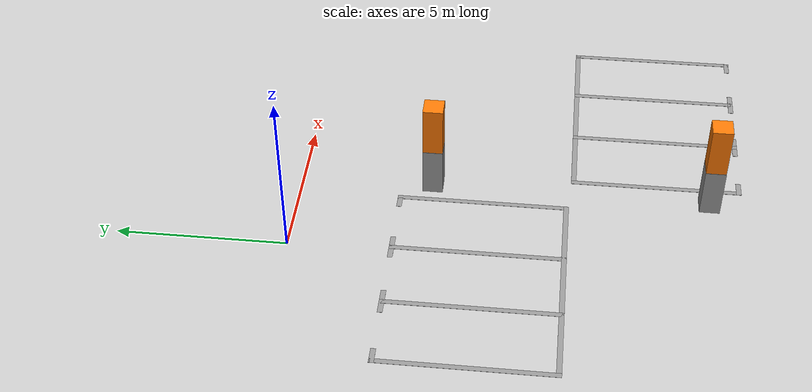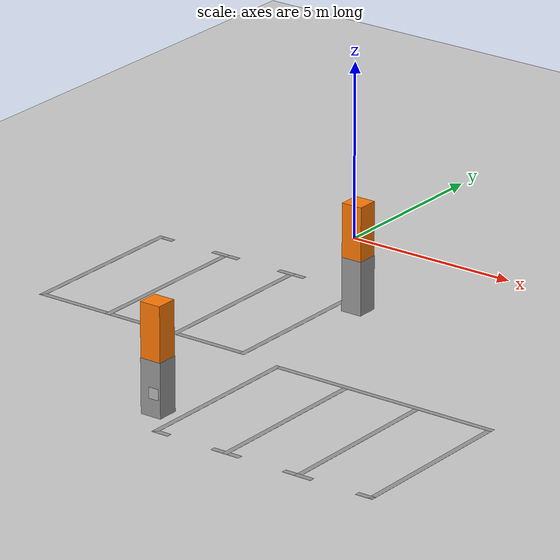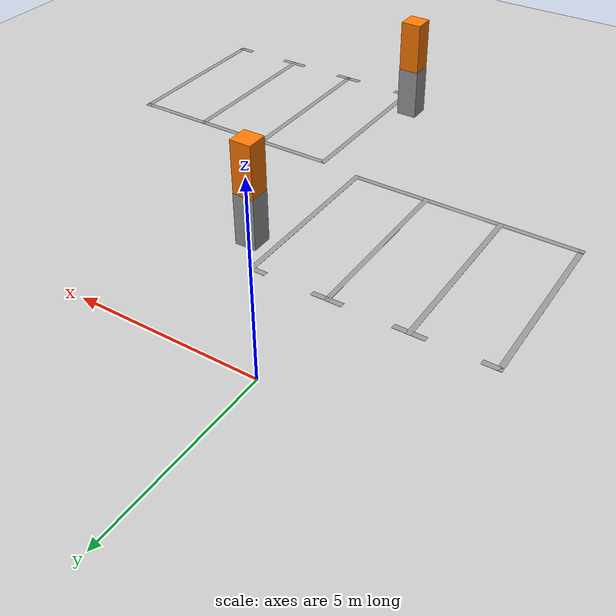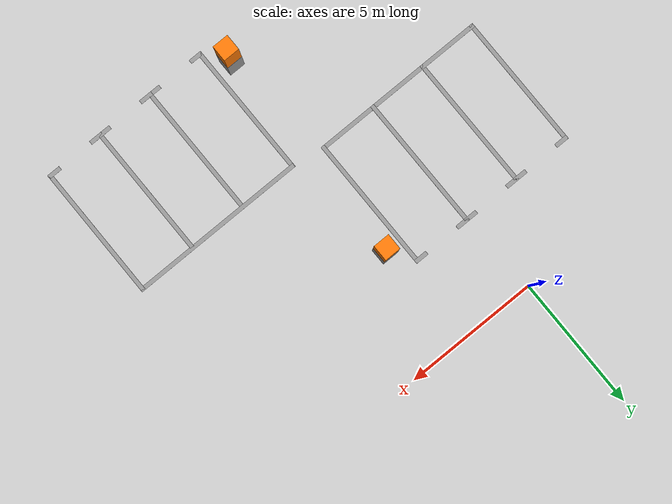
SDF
<sdf version="1.7">
 <world name="default">
  <model name="ground_plane">
   <static>1</static>
   <link name="link">
    <collision name="collision">
     <geometry><plane><normal>0 0 1</normal><size>100 100</size></plane></geometry>
     <surface><friction><ode><mu>100</mu><mu2>50</mu2></ode></friction></surface>
    </collision>
    <visual name="visual">
     <cast_shadows>0</cast_shadows>
     <geometry><plane><normal>0 0 1</normal><size>100 100</size></plane></geometry>
     <material>
      <script><uri>file://media/materials/scripts/gazebo.material</uri><name>Gazebo/Grey</name></script>
     </material>
    </visual>
   </link>
  </model>
  <model name="carport1_4_clone_2">
   <pose>-0.47857 -7.23796 0 0 -0 3.14141</pose>
   <link name="Wall_105">
    <collision name="Wall_105_Collision">
     <geometry><box><size>0.61 0.6 1.5</size></box></geometry>
     <pose>0 0 0.75 0 -0 0</pose>
    </collision>
    <visual name="Wall_105_Visual">
     <pose>0 0 0.75 0 -0 0</pose>
     <geometry><box><size>0.61 0.6 1.5</size></box></geometry>
     <material>
      <script><uri>file://media/materials/scripts/gazebo.material</uri><name>Gazebo/Grey</name></script>
      <ambient>1 1 1 1</ambient>
     </material>
     <meta><layer>0</layer></meta>
    </visual>
    <pose>-3.47407 -3.2865 0 0 -0 0</pose>
   </link>
   <link name="Wall_116">
    <collision name="Wall_116_Collision">
     <geometry><box><size>5.1 0.15 0.005</size></box></geometry>
     <pose>0 0 0.0025 0 -0 0</pose>
    </collision>
    <visual name="Wall_116_Visual">
     <pose>0 0 0.0025 0 -0 0</pose>
     <geometry><box><size>5.1 0.15 0.005</size></box></geometry>
     <material>
      <script><uri>file://media/materials/scripts/gazebo.material</uri><name>Gazebo/Grey</name></script>
      <ambient>1 1 1 1</ambient>
     </material>
     <meta><layer>0</layer></meta>
    </visual>
    <pose>-2.82307 -1.7385 0 0 -0 1.5708</pose>
   </link>
   <link name="Wall_124">
    <collision name="Wall_124_Collision">
     <geometry><box><size>5.1 0.15 0.005</size></box></geometry>
     <pose>0 0 0.0025 0 -0 0</pose>
    </collision>
    <visual name="Wall_124_Visual">
     <pose>0 0 0.0025 0 -0 0</pose>
     <geometry><box><size>5.1 0.15 0.005</size></box></geometry>
     <material>
      <script><uri>file://media/materials/scripts/gazebo.material</uri><name>Gazebo/Grey</name></script>
      <ambient>1 1 1 1</ambient>
     </material>
     <meta><layer>0</layer></meta>
    </visual>
    <pose>3.70393 -1.7305 0 0 -0 1.5708</pose>
   </link>
   <link name="Wall_146">
    <collision name="Wall_146_Collision">
     <geometry><box><size>6.67711 0.15 0.005</size></box></geometry>
     <pose>0 0 0.0025 0 -0 0</pose>
    </collision>
    <visual name="Wall_146_Visual">
     <pose>0 0 0.0025 0 -0 0</pose>
     <geometry><box><size>6.67711 0.15 0.005</size></box></geometry>
     <material>
      <script><uri>file://media/materials/scripts/gazebo.material</uri><name>Gazebo/Grey</name></script>
      <ambient>1 1 1 1</ambient>
     </material>
     <meta><layer>0</layer></meta>
    </visual>
    <pose>0.440428 0.7405 0 0 -0 0.001226</pose>
   </link>
   <link name="Wall_168">
    <collision name="Wall_168_Collision">
     <geometry><box><size>5.1 0.15 0.005</size></box></geometry>
     <pose>0 0 0.0025 0 -0 0</pose>
    </collision>
    <visual name="Wall_168_Visual">
     <pose>0 0 0.0025 0 -0 0</pose>
     <geometry><box><size>5.1 0.15 0.005</size></box></geometry>
     <material>
      <script><uri>file://media/materials/scripts/gazebo.material</uri><name>Gazebo/Grey</name></script>
      <ambient>1 1 1 1</ambient>
     </material>
     <meta><layer>0</layer></meta>
    </visual>
    <pose>-0.64827 -1.73839 0 0 -0 1.57088</pose>
   </link>
   <link name="Wall_173">
    <collision name="Wall_173_Collision">
     <geometry><box><size>5.1 0.15 0.005</size></box></geometry>
     <pose>0 0 0.0025 0 -0 0</pose>
    </collision>
    <visual name="Wall_173_Visual">
     <pose>0 0 0.0025 0 -0 0</pose>
     <geometry><box><size>5.1 0.15 0.005</size></box></geometry>
     <material>
      <script><uri>file://media/materials/scripts/gazebo.material</uri><name>Gazebo/Grey</name></script>
      <ambient>1 1 1 1</ambient>
     </material>
     <meta><layer>0</layer></meta>
    </visual>
    <pose>1.52673 -1.73839 0 0 -0 1.57088</pose>
   </link>
   <link name="Wall_177">
    <collision name="Wall_177_Collision">
     <geometry><box><size>0.6 0.59 3</size></box></geometry>
     <pose>0 0 1.5 0 -0 0</pose>
    </collision>
    <visual name="Wall_177_Visual">
     <pose>0 0 1.5 0 -0 0</pose>
     <geometry><box><size>0.6 0.59 3</size></box></geometry>
     <material>
      <script><uri>file://media/materials/scripts/gazebo.material</uri><name>Gazebo/Grey</name></script>
      <ambient>0.996078 0.47451 0.0196078 1</ambient>
     </material>
     <meta><layer>0</layer></meta>
    </visual>
    <pose>-3.47407 -3.2865 0 0 -0 0</pose>
   </link>
   <link name="Wall_179">
    <collision name="Wall_179_Collision">
     <geometry><box><size>0.5 0.15 0.005</size></box></geometry>
     <pose>0 0 0.0025 0 -0 0</pose>
    </collision>
    <visual name="Wall_179_Visual">
     <pose>0 0 0.0025 0 -0 0</pose>
     <geometry><box><size>0.5 0.15 0.005</size></box></geometry>
     <material>
      <script><uri>file://media/materials/scripts/gazebo.material</uri><name>Gazebo/Grey</name></script>
      <ambient>1 1 1 1</ambient>
     </material>
     <meta><layer>0</layer></meta>
    </visual>
    <pose>-2.64807 -4.2135 0 0 -0 0</pose>
   </link>
   <link name="Wall_181">
    <collision name="Wall_181_Collision">
     <geometry><box><size>0.5 0.15 0.005</size></box></geometry>
     <pose>0 0 0.0025 0 -0 0</pose>
    </collision>
    <visual name="Wall_181_Visual">
     <pose>0 0 0.0025 0 -0 0</pose>
     <geometry><box><size>0.5 0.15 0.005</size></box></geometry>
     <material>
      <script><uri>file://media/materials/scripts/gazebo.material</uri><name>Gazebo/Grey</name></script>
      <ambient>1 1 1 1</ambient>
     </material>
     <meta><layer>0</layer></meta>
    </visual>
    <pose>-0.823072 -4.2135 0 0 -0 3.14159</pose>
   </link>
   <link name="Wall_183">
    <collision name="Wall_183_Collision">
     <geometry><box><size>0.5 0.15 0.005</size></box></geometry>
     <pose>0 0 0.0025 0 -0 0</pose>
    </collision>
    <visual name="Wall_183_Visual">
     <pose>0 0 0.0025 0 -0 0</pose>
     <geometry><box><size>0.5 0.15 0.005</size></box></geometry>
     <material>
      <script><uri>file://media/materials/scripts/gazebo.material</uri><name>Gazebo/Grey</name></script>
      <ambient>1 1 1 1</ambient>
     </material>
     <meta><layer>0</layer></meta>
    </visual>
    <pose>-0.473072 -4.2135 0 0 -0 0</pose>
   </link>
   <link name="Wall_185">
    <collision name="Wall_185_Collision">
     <geometry><box><size>0.5 0.15 0.005</size></box></geometry>
     <pose>0 0 0.0025 0 -0 0</pose>
    </collision>
    <visual name="Wall_185_Visual">
     <pose>0 0 0.0025 0 -0 0</pose>
     <geometry><box><size>0.5 0.15 0.005</size></box></geometry>
     <material>
      <script><uri>file://media/materials/scripts/gazebo.material</uri><name>Gazebo/Grey</name></script>
      <ambient>1 1 1 1</ambient>
     </material>
     <meta><layer>0</layer></meta>
    </visual>
    <pose>1.35193 -4.2135 0 0 -0 3.14159</pose>
   </link>
   <link name="Wall_187">
    <collision name="Wall_187_Collision">
     <geometry><box><size>0.5 0.15 0.005</size></box></geometry>
     <pose>0 0 0.0025 0 -0 0</pose>
    </collision>
    <visual name="Wall_187_Visual">
     <pose>0 0 0.0025 0 -0 0</pose>
     <geometry><box><size>0.5 0.15 0.005</size></box></geometry>
     <material>
      <script><uri>file://media/materials/scripts/gazebo.material</uri><name>Gazebo/Grey</name></script>
      <ambient>1 1 1 1</ambient>
     </material>
     <meta><layer>0</layer></meta>
    </visual>
    <pose>1.70193 -4.2135 0 0 -0 0</pose>
   </link>
   <link name="Wall_189">
    <collision name="Wall_189_Collision">
     <geometry><box><size>0.5 0.15 0.005</size></box></geometry>
     <pose>0 0 0.0025 0 -0 0</pose>
    </collision>
    <visual name="Wall_189_Visual">
     <pose>0 0 0.0025 0 -0 0</pose>
     <geometry><box><size>0.5 0.15 0.005</size></box></geometry>
     <material>
      <script><uri>file://media/materials/scripts/gazebo.material</uri><name>Gazebo/Grey</name></script>
      <ambient>1 1 1 1</ambient>
     </material>
     <meta><layer>0</layer></meta>
    </visual>
    <pose>3.52893 -4.2055 0 0 -0 3.14159</pose>
   </link>
   <static>1</static>
  </model>
  <model name="carport1_3_clone_clone_3_clone">
   <pose>6.38336 -8.9061 0 0 -0 0</pose>
   <link name="Wall_105">
    <collision name="Wall_105_Collision">
     <geometry><box><size>0.61 0.6 1.5</size></box></geometry>
     <pose>0 0 0.75 0 -0 0</pose>
    </collision>
    <visual name="Wall_105_Visual">
     <pose>0 0 0.75 0 -0 0</pose>
     <geometry><box><size>0.61 0.6 1.5</size></box></geometry>
     <material>
      <script><uri>file://media/materials/scripts/gazebo.material</uri><name>Gazebo/Grey</name></script>
      <ambient>1 1 1 1</ambient>
     </material>
     <meta><layer>0</layer></meta>
    </visual>
    <pose>-3.47407 -3.2865 0 0 -0 0</pose>
   </link>
   <link name="Wall_116">
    <collision name="Wall_116_Collision">
     <geometry><box><size>5.1 0.15 0.005</size></box></geometry>
     <pose>0 0 0.0025 0 -0 0</pose>
    </collision>
    <visual name="Wall_116_Visual">
     <pose>0 0 0.0025 0 -0 0</pose>
     <geometry><box><size>5.1 0.15 0.005</size></box></geometry>
     <material>
      <script><uri>file://media/materials/scripts/gazebo.material</uri><name>Gazebo/Grey</name></script>
      <ambient>1 1 1 1</ambient>
     </material>
     <meta><layer>0</layer></meta>
    </visual>
    <pose>-2.82307 -1.7385 0 0 -0 1.5708</pose>
   </link>
   <link name="Wall_124">
    <collision name="Wall_124_Collision">
     <geometry><box><size>5.1 0.15 0.005</size></box></geometry>
     <pose>0 0 0.0025 0 -0 0</pose>
    </collision>
    <visual name="Wall_124_Visual">
     <pose>0 0 0.0025 0 -0 0</pose>
     <geometry><box><size>5.1 0.15 0.005</size></box></geometry>
     <material>
      <script><uri>file://media/materials/scripts/gazebo.material</uri><name>Gazebo/Grey</name></script>
      <ambient>1 1 1 1</ambient>
     </material>
     <meta><layer>0</layer></meta>
    </visual>
    <pose>3.70393 -1.7305 0 0 -0 1.5708</pose>
   </link>
   <link name="Wall_146">
    <collision name="Wall_146_Collision">
     <geometry><box><size>6.67711 0.15 0.005</size></box></geometry>
     <pose>0 0 0.0025 0 -0 0</pose>
    </collision>
    <visual name="Wall_146_Visual">
     <pose>0 0 0.0025 0 -0 0</pose>
     <geometry><box><size>6.67711 0.15 0.005</size></box></geometry>
     <material>
      <script><uri>file://media/materials/scripts/gazebo.material</uri><name>Gazebo/Grey</name></script>
      <ambient>1 1 1 1</ambient>
     </material>
     <meta><layer>0</layer></meta>
    </visual>
    <pose>0.440428 0.7405 0 0 -0 0.001226</pose>
   </link>
   <link name="Wall_168">
    <collision name="Wall_168_Collision">
     <geometry><box><size>5.1 0.15 0.005</size></box></geometry>
     <pose>0 0 0.0025 0 -0 0</pose>
    </collision>
    <visual name="Wall_168_Visual">
     <pose>0 0 0.0025 0 -0 0</pose>
     <geometry><box><size>5.1 0.15 0.005</size></box></geometry>
     <material>
      <script><uri>file://media/materials/scripts/gazebo.material</uri><name>Gazebo/Grey</name></script>
      <ambient>1 1 1 1</ambient>
     </material>
     <meta><layer>0</layer></meta>
    </visual>
    <pose>-0.64827 -1.73839 0 0 -0 1.57088</pose>
   </link>
   <link name="Wall_173">
    <collision name="Wall_173_Collision">
     <geometry><box><size>5.1 0.15 0.005</size></box></geometry>
     <pose>0 0 0.0025 0 -0 0</pose>
    </collision>
    <visual name="Wall_173_Visual">
     <pose>0 0 0.0025 0 -0 0</pose>
     <geometry><box><size>5.1 0.15 0.005</size></box></geometry>
     <material>
      <script><uri>file://media/materials/scripts/gazebo.material</uri><name>Gazebo/Grey</name></script>
      <ambient>1 1 1 1</ambient>
     </material>
     <meta><layer>0</layer></meta>
    </visual>
    <pose>1.52673 -1.73839 0 0 -0 1.57088</pose>
   </link>
   <link name="Wall_177">
    <collision name="Wall_177_Collision">
     <geometry><box><size>0.6 0.59 3</size></box></geometry>
     <pose>0 0 1.5 0 -0 0</pose>
    </collision>
    <visual name="Wall_177_Visual">
     <pose>0 0 1.5 0 -0 0</pose>
     <geometry><box><size>0.6 0.59 3</size></box></geometry>
     <material>
      <script><uri>file://media/materials/scripts/gazebo.material</uri><name>Gazebo/Grey</name></script>
      <ambient>0.996078 0.47451 0.0196078 1</ambient>
     </material>
     <meta><layer>0</layer></meta>
    </visual>
    <pose>-3.47407 -3.2865 0 0 -0 0</pose>
   </link>
   <link name="Wall_179">
    <collision name="Wall_179_Collision">
     <geometry><box><size>0.5 0.15 0.005</size></box></geometry>
     <pose>0 0 0.0025 0 -0 0</pose>
    </collision>
    <visual name="Wall_179_Visual">
     <pose>0 0 0.0025 0 -0 0</pose>
     <geometry><box><size>0.5 0.15 0.005</size></box></geometry>
     <material>
      <script><uri>file://media/materials/scripts/gazebo.material</uri><name>Gazebo/Grey</name></script>
      <ambient>1 1 1 1</ambient>
     </material>
     <meta><layer>0</layer></meta>
    </visual>
    <pose>-2.64807 -4.2135 0 0 -0 0</pose>
   </link>
   <link name="Wall_181">
    <collision name="Wall_181_Collision">
     <geometry><box><size>0.5 0.15 0.005</size></box></geometry>
     <pose>0 0 0.0025 0 -0 0</pose>
    </collision>
    <visual name="Wall_181_Visual">
     <pose>0 0 0.0025 0 -0 0</pose>
     <geometry><box><size>0.5 0.15 0.005</size></box></geometry>
     <material>
      <script><uri>file://media/materials/scripts/gazebo.material</uri><name>Gazebo/Grey</name></script>
      <ambient>1 1 1 1</ambient>
     </material>
     <meta><layer>0</layer></meta>
    </visual>
    <pose>-0.823072 -4.2135 0 0 -0 3.14159</pose>
   </link>
   <link name="Wall_183">
    <collision name="Wall_183_Collision">
     <geometry><box><size>0.5 0.15 0.005</size></box></geometry>
     <pose>0 0 0.0025 0 -0 0</pose>
    </collision>
    <visual name="Wall_183_Visual">
     <pose>0 0 0.0025 0 -0 0</pose>
     <geometry><box><size>0.5 0.15 0.005</size></box></geometry>
     <material>
      <script><uri>file://media/materials/scripts/gazebo.material</uri><name>Gazebo/Grey</name></script>
      <ambient>1 1 1 1</ambient>
     </material>
     <meta><layer>0</layer></meta>
    </visual>
    <pose>-0.473072 -4.2135 0 0 -0 0</pose>
   </link>
   <link name="Wall_185">
    <collision name="Wall_185_Collision">
     <geometry><box><size>0.5 0.15 0.005</size></box></geometry>
     <pose>0 0 0.0025 0 -0 0</pose>
    </collision>
    <visual name="Wall_185_Visual">
     <pose>0 0 0.0025 0 -0 0</pose>
     <geometry><box><size>0.5 0.15 0.005</size></box></geometry>
     <material>
      <script><uri>file://media/materials/scripts/gazebo.material</uri><name>Gazebo/Grey</name></script>
      <ambient>1 1 1 1</ambient>
     </material>
     <meta><layer>0</layer></meta>
    </visual>
    <pose>1.35193 -4.2135 0 0 -0 3.14159</pose>
   </link>
   <link name="Wall_187">
    <collision name="Wall_187_Collision">
     <geometry><box><size>0.5 0.15 0.005</size></box></geometry>
     <pose>0 0 0.0025 0 -0 0</pose>
    </collision>
    <visual name="Wall_187_Visual">
     <pose>0 0 0.0025 0 -0 0</pose>
     <geometry><box><size>0.5 0.15 0.005</size></box></geometry>
     <material>
      <script><uri>file://media/materials/scripts/gazebo.material</uri><name>Gazebo/Grey</name></script>
      <ambient>1 1 1 1</ambient>
     </material>
     <meta><layer>0</layer></meta>
    </visual>
    <pose>1.70193 -4.2135 0 0 -0 0</pose>
   </link>
   <link name="Wall_189">
    <collision name="Wall_189_Collision">
     <geometry><box><size>0.5 0.15 0.005</size></box></geometry>
     <pose>0 0 0.0025 0 -0 0</pose>
    </collision>
    <visual name="Wall_189_Visual">
     <pose>0 0 0.0025 0 -0 0</pose>
     <geometry><box><size>0.5 0.15 0.005</size></box></geometry>
     <material>
      <script><uri>file://media/materials/scripts/gazebo.material</uri><name>Gazebo/Grey</name></script>
      <ambient>1 1 1 1</ambient>
     </material>
     <meta><layer>0</layer></meta>
    </visual>
    <pose>3.52893 -4.2055 0 0 -0 3.14159</pose>
   </link>
   <static>1</static>
  </model>
  <model name="Apriltag36_11_00010_clone_clone_0_clone">
   <link name="main">
    <visual name="main_Visual">
     <geometry><box><size>0.3 0.3 0.01</size></box></geometry>
     <material>
      <script>
       <uri>model://Apriltag36_11_00010/materials/scripts</uri>
       <uri>model://Apriltag36_11_00010/materials/textures</uri>
       <name>Apriltag36_11_00010</name>
      </script>
     </material>
    </visual>
   </link>
   <static>1</static>
   <pose>3.00621 -12.496 0.635247 1.56984 -0 0</pose>
  </model>
 </world>
</sdf>
